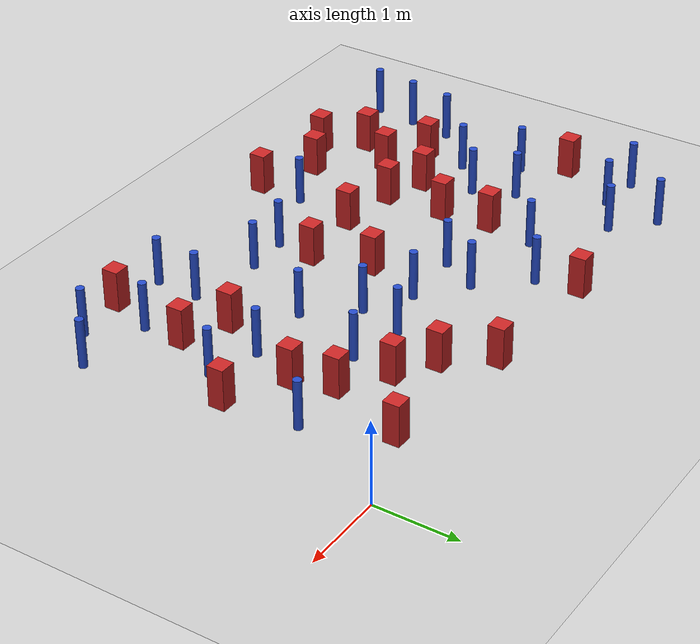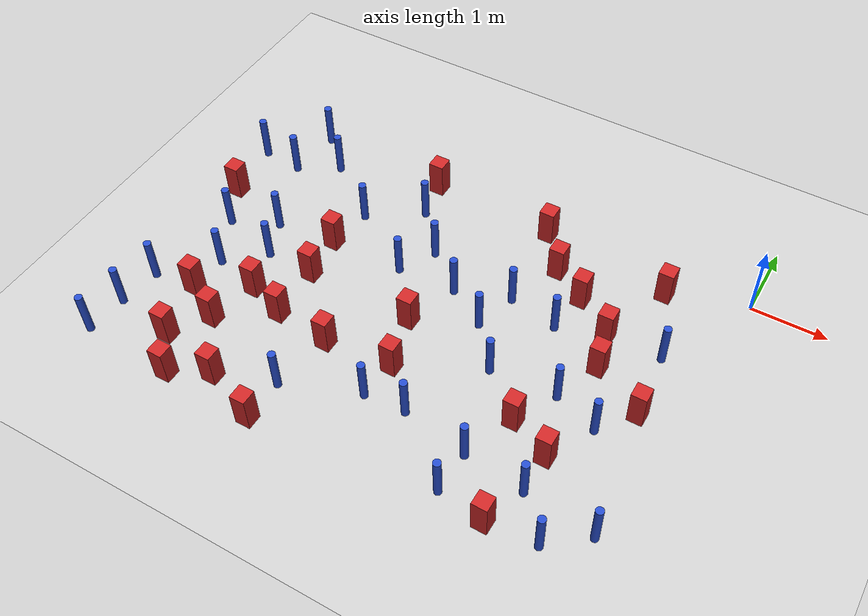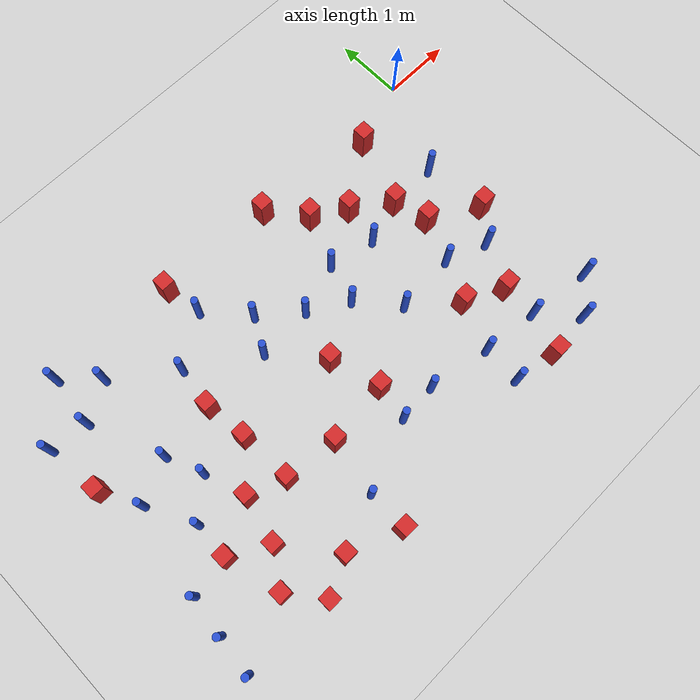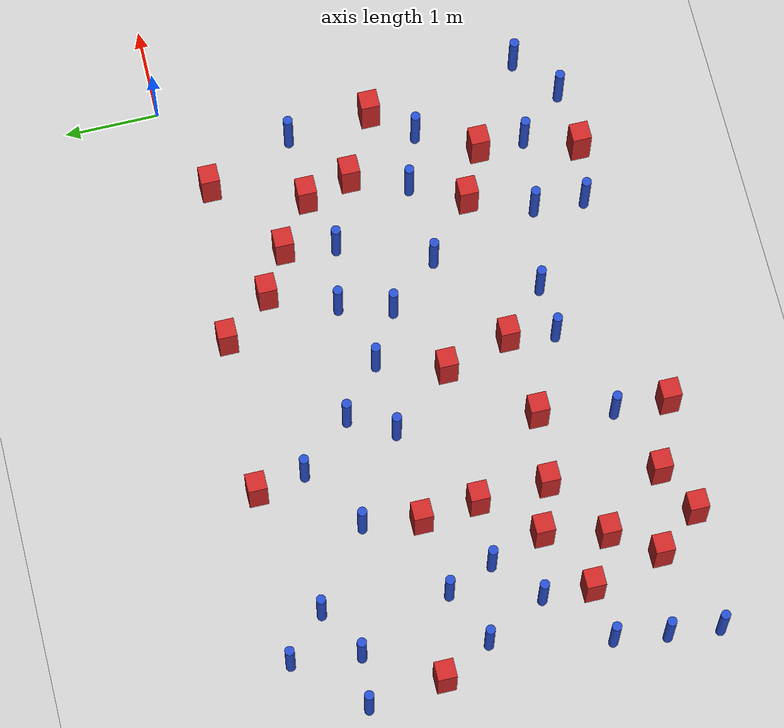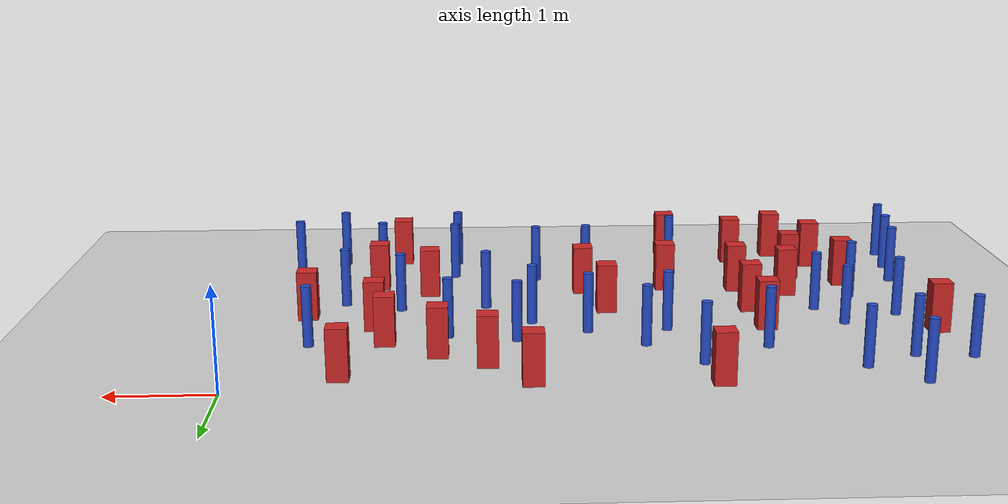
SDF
<sdf version="1.6">
 <world name="default">
  <model name="ground_plane">
   <static>1</static>
   <link name="link">
    <collision name="collision">
     <geometry><plane><normal>0 0 1</normal><size>100 100</size></plane></geometry>
     <surface><friction><ode><mu>100</mu><mu2>50</mu2></ode></friction></surface>
    </collision>
    <visual name="visual">
     <cast_shadows>0</cast_shadows>
     <geometry><plane><normal>0 0 1</normal><size>100 100</size></plane></geometry>
     <material>
      <ambient>1.0 1.0 1.0 1.0</ambient>
      <diffuse>0.8 0.8 0.8 1.0</diffuse>
      <specular>0.01 0.01 0.01 1.000000</specular>
     </material>
    </visual>
   </link>
  </model>
  <model name="square_post_obstacle4">
   <static>true</static>
   <pose>-0.558098675889 -2.19757044588 -6.11067671241e-07 -5.50515727128e-06 -8.79689657224e-07 2.37013304536e-05</pose>
   <link name="link">
    <pose>0 0 0.25 0 -0 0</pose>
    <inertial>
     <mass>100</mass>
     <inertia>
      <ixx>0.166667</ixx>
      <ixy>0</ixy>
      <ixz>0</ixz>
      <iyy>0.166667</iyy>
      <iyz>0</iyz>
      <izz>0.166667</izz>
     </inertia>
    </inertial>
    <collision name="collision"><geometry><box><size>.2 .2 .5</size></box></geometry></collision>
    <visual name="visual">
     <geometry><box><size>.2 .2 .5</size></box></geometry>
     <material>
      <script><name>Gazebo/Red</name><uri>file://media/materials/scripts/gazebo.material</uri></script>
     </material>
    </visual>
   </link>
  </model>
  <model name="square_post_obstacle14">
   <static>true</static>
   <pose>-5.1214121958 -1.67330431272 -6.11067671241e-07 -5.50515727128e-06 -8.79689657224e-07 2.37013304536e-05</pose>
   <link name="link">
    <pose>0 0 0.25 0 -0 0</pose>
    <inertial>
     <mass>100</mass>
     <inertia>
      <ixx>0.166667</ixx>
      <ixy>0</ixy>
      <ixz>0</ixz>
      <iyy>0.166667</iyy>
      <iyz>0</iyz>
      <izz>0.166667</izz>
     </inertia>
    </inertial>
    <collision name="collision"><geometry><box><size>.2 .2 .5</size></box></geometry></collision>
    <visual name="visual">
     <geometry><box><size>.2 .2 .5</size></box></geometry>
     <material>
      <script><name>Gazebo/Red</name><uri>file://media/materials/scripts/gazebo.material</uri></script>
     </material>
    </visual>
   </link>
  </model>
  <model name="pole_obstacle21">
   <static>true</static>
   <pose>-2.02783137818 -3.64568901549 -9.4761961606e-06 5.49618799729e-07 2.36310414004e-07 -1.55090534822e-07</pose>
   <link name="link">
    <pose>0 0 0.3 0 -0 0</pose>
    <inertial>
     <mass>1</mass>
     <inertia><ixx>0.145833</ixx><ixy>0</ixy><ixz>0</ixz><iyy>0.145833</iyy><iyz>0</iyz><izz>0.125</izz></inertia>
    </inertial>
    <collision name="collision">
     <geometry><cylinder><radius>0.05</radius><length>.6</length></cylinder></geometry>
    </collision>
    <visual name="visual">
     <geometry><cylinder><radius>0.05</radius><length>.6</length></cylinder></geometry>
     <material>
      <script><name>Gazebo/Blue</name><uri>file://media/materials/scripts/gazebo.material</uri></script>
     </material>
    </visual>
   </link>
  </model>
  <model name="pole_obstacle22">
   <static>true</static>
   <pose>-5.03577180284 -1.0737717976 -9.47619616065e-06 5.49618799738e-07 2.36310414071e-07 -1.55090534796e-07</pose>
   <link name="link">
    <pose>0 0 0.3 0 -0 0</pose>
    <inertial>
     <mass>1</mass>
     <inertia><ixx>0.145833</ixx><ixy>0</ixy><ixz>0</ixz><iyy>0.145833</iyy><iyz>0</iyz><izz>0.125</izz></inertia>
    </inertial>
    <collision name="collision">
     <geometry><cylinder><radius>0.05</radius><length>.6</length></cylinder></geometry>
    </collision>
    <visual name="visual">
     <geometry><cylinder><radius>0.05</radius><length>.6</length></cylinder></geometry>
     <material>
      <script><name>Gazebo/Blue</name><uri>file://media/materials/scripts/gazebo.material</uri></script>
     </material>
    </visual>
   </link>
  </model>
  <model name="square_post_obstacle19">
   <static>true</static>
   <pose>-5.03172364443 -3.02392803478 -6.11067671241e-07 -5.50515727128e-06 -8.79689657224e-07 2.37013304536e-05</pose>
   <link name="link">
    <pose>0 0 0.25 0 -0 0</pose>
    <inertial>
     <mass>100</mass>
     <inertia>
      <ixx>0.166667</ixx>
      <ixy>0</ixy>
      <ixz>0</ixz>
      <iyy>0.166667</iyy>
      <iyz>0</iyz>
      <izz>0.166667</izz>
     </inertia>
    </inertial>
    <collision name="collision"><geometry><box><size>.2 .2 .5</size></box></geometry></collision>
    <visual name="visual">
     <geometry><box><size>.2 .2 .5</size></box></geometry>
     <material>
      <script><name>Gazebo/Red</name><uri>file://media/materials/scripts/gazebo.material</uri></script>
     </material>
    </visual>
   </link>
  </model>
  <model name="pole_obstacle35">
   <static>true</static>
   <pose>-1.97851707046 -1.50995759939 -9.47619616065e-06 5.49618799737e-07 2.36310414056e-07 -1.55090534802e-07</pose>
   <link name="link">
    <pose>0 0 0.3 0 -0 0</pose>
    <inertial>
     <mass>1</mass>
     <inertia><ixx>0.145833</ixx><ixy>0</ixy><ixz>0</ixz><iyy>0.145833</iyy><iyz>0</iyz><izz>0.125</izz></inertia>
    </inertial>
    <collision name="collision">
     <geometry><cylinder><radius>0.05</radius><length>.6</length></cylinder></geometry>
    </collision>
    <visual name="visual">
     <geometry><cylinder><radius>0.05</radius><length>.6</length></cylinder></geometry>
     <material>
      <script><name>Gazebo/Blue</name><uri>file://media/materials/scripts/gazebo.material</uri></script>
     </material>
    </visual>
   </link>
  </model>
  <model name="square_post_obstacle31">
   <static>true</static>
   <pose>-5.6619315231 -4.41744637052 -6.11067671241e-07 -5.50515727128e-06 -8.79689657224e-07 2.37013304536e-05</pose>
   <link name="link">
    <pose>0 0 0.25 0 -0 0</pose>
    <inertial>
     <mass>100</mass>
     <inertia>
      <ixx>0.166667</ixx>
      <ixy>0</ixy>
      <ixz>0</ixz>
      <iyy>0.166667</iyy>
      <iyz>0</iyz>
      <izz>0.166667</izz>
     </inertia>
    </inertial>
    <collision name="collision"><geometry><box><size>.2 .2 .5</size></box></geometry></collision>
    <visual name="visual">
     <geometry><box><size>.2 .2 .5</size></box></geometry>
     <material>
      <script><name>Gazebo/Red</name><uri>file://media/materials/scripts/gazebo.material</uri></script>
     </material>
    </visual>
   </link>
  </model>
  <model name="square_post_obstacle35">
   <static>true</static>
   <pose>-3.38780124334 -3.0154551728 -6.11067671241e-07 -5.50515727128e-06 -8.79689657224e-07 2.37013304536e-05</pose>
   <link name="link">
    <pose>0 0 0.25 0 -0 0</pose>
    <inertial>
     <mass>100</mass>
     <inertia>
      <ixx>0.166667</ixx>
      <ixy>0</ixy>
      <ixz>0</ixz>
      <iyy>0.166667</iyy>
      <iyz>0</iyz>
      <izz>0.166667</izz>
     </inertia>
    </inertial>
    <collision name="collision"><geometry><box><size>.2 .2 .5</size></box></geometry></collision>
    <visual name="visual">
     <geometry><box><size>.2 .2 .5</size></box></geometry>
     <material>
      <script><name>Gazebo/Red</name><uri>file://media/materials/scripts/gazebo.material</uri></script>
     </material>
    </visual>
   </link>
  </model>
  <model name="pole_obstacle46">
   <static>true</static>
   <pose>-6.52909514919 -2.03492789765 -9.47619616065e-06 5.49618799737e-07 2.36310414063e-07 -1.55090534798e-07</pose>
   <link name="link">
    <pose>0 0 0.3 0 -0 0</pose>
    <inertial>
     <mass>1</mass>
     <inertia><ixx>0.145833</ixx><ixy>0</ixy><ixz>0</ixz><iyy>0.145833</iyy><iyz>0</iyz><izz>0.125</izz></inertia>
    </inertial>
    <collision name="collision">
     <geometry><cylinder><radius>0.05</radius><length>.6</length></cylinder></geometry>
    </collision>
    <visual name="visual">
     <geometry><cylinder><radius>0.05</radius><length>.6</length></cylinder></geometry>
     <material>
      <script><name>Gazebo/Blue</name><uri>file://media/materials/scripts/gazebo.material</uri></script>
     </material>
    </visual>
   </link>
  </model>
  <model name="pole_obstacle53">
   <static>true</static>
   <pose>-2.64111507055 -1.3773461991 -9.47619616065e-06 5.49618799737e-07 2.36310414072e-07 -1.55090534793e-07</pose>
   <link name="link">
    <pose>0 0 0.3 0 -0 0</pose>
    <inertial>
     <mass>1</mass>
     <inertia><ixx>0.145833</ixx><ixy>0</ixy><ixz>0</ixz><iyy>0.145833</iyy><iyz>0</iyz><izz>0.125</izz></inertia>
    </inertial>
    <collision name="collision">
     <geometry><cylinder><radius>0.05</radius><length>.6</length></cylinder></geometry>
    </collision>
    <visual name="visual">
     <geometry><cylinder><radius>0.05</radius><length>.6</length></cylinder></geometry>
     <material>
      <script><name>Gazebo/Blue</name><uri>file://media/materials/scripts/gazebo.material</uri></script>
     </material>
    </visual>
   </link>
  </model>
  <model name="pole_obstacle68">
   <static>true</static>
   <pose>-2.80591923487 -1.93077775715 -9.47619616065e-06 5.49618799737e-07 2.36310414072e-07 -1.55090534793e-07</pose>
   <link name="link">
    <pose>0 0 0.3 0 -0 0</pose>
    <inertial>
     <mass>1</mass>
     <inertia><ixx>0.145833</ixx><ixy>0</ixy><ixz>0</ixz><iyy>0.145833</iyy><iyz>0</iyz><izz>0.125</izz></inertia>
    </inertial>
    <collision name="collision">
     <geometry><cylinder><radius>0.05</radius><length>.6</length></cylinder></geometry>
    </collision>
    <visual name="visual">
     <geometry><cylinder><radius>0.05</radius><length>.6</length></cylinder></geometry>
     <material>
      <script><name>Gazebo/Blue</name><uri>file://media/materials/scripts/gazebo.material</uri></script>
     </material>
    </visual>
   </link>
  </model>
  <model name="square_post_obstacle56">
   <static>true</static>
   <pose>-5.70026569055 -3.48838123317 -6.11067671241e-07 -5.50515727128e-06 -8.79689657224e-07 2.37013304536e-05</pose>
   <link name="link">
    <pose>0 0 0.25 0 -0 0</pose>
    <inertial>
     <mass>100</mass>
     <inertia>
      <ixx>0.166667</ixx>
      <ixy>0</ixy>
      <ixz>0</ixz>
      <iyy>0.166667</iyy>
      <iyz>0</iyz>
      <izz>0.166667</izz>
     </inertia>
    </inertial>
    <collision name="collision"><geometry><box><size>.2 .2 .5</size></box></geometry></collision>
    <visual name="visual">
     <geometry><box><size>.2 .2 .5</size></box></geometry>
     <material>
      <script><name>Gazebo/Red</name><uri>file://media/materials/scripts/gazebo.material</uri></script>
     </material>
    </visual>
   </link>
  </model>
  <model name="square_post_obstacle57">
   <static>true</static>
   <pose>-6.02139388308 -3.96171412349 -6.11067671241e-07 -5.50515727128e-06 -8.79689657224e-07 2.37013304536e-05</pose>
   <link name="link">
    <pose>0 0 0.25 0 -0 0</pose>
    <inertial>
     <mass>100</mass>
     <inertia>
      <ixx>0.166667</ixx>
      <ixy>0</ixy>
      <ixz>0</ixz>
      <iyy>0.166667</iyy>
      <iyz>0</iyz>
      <izz>0.166667</izz>
     </inertia>
    </inertial>
    <collision name="collision"><geometry><box><size>.2 .2 .5</size></box></geometry></collision>
    <visual name="visual">
     <geometry><box><size>.2 .2 .5</size></box></geometry>
     <material>
      <script><name>Gazebo/Red</name><uri>file://media/materials/scripts/gazebo.material</uri></script>
     </material>
    </visual>
   </link>
  </model>
  <model name="square_post_obstacle61">
   <static>true</static>
   <pose>-5.54104219781 -2.83937394282 -6.11067671241e-07 -5.50515727128e-06 -8.79689657224e-07 2.37013304536e-05</pose>
   <link name="link">
    <pose>0 0 0.25 0 -0 0</pose>
    <inertial>
     <mass>100</mass>
     <inertia>
      <ixx>0.166667</ixx>
      <ixy>0</ixy>
      <ixz>0</ixz>
      <iyy>0.166667</iyy>
      <iyz>0</iyz>
      <izz>0.166667</izz>
     </inertia>
    </inertial>
    <collision name="collision"><geometry><box><size>.2 .2 .5</size></box></geometry></collision>
    <visual name="visual">
     <geometry><box><size>.2 .2 .5</size></box></geometry>
     <material>
      <script><name>Gazebo/Red</name><uri>file://media/materials/scripts/gazebo.material</uri></script>
     </material>
    </visual>
   </link>
  </model>
  <model name="square_post_obstacle67">
   <static>true</static>
   <pose>-4.44363134216 -0.104525454415 -6.11067671241e-07 -5.50515727128e-06 -8.79689657224e-07 2.37013304536e-05</pose>
   <link name="link">
    <pose>0 0 0.25 0 -0 0</pose>
    <inertial>
     <mass>100</mass>
     <inertia>
      <ixx>0.166667</ixx>
      <ixy>0</ixy>
      <ixz>0</ixz>
      <iyy>0.166667</iyy>
      <iyz>0</iyz>
      <izz>0.166667</izz>
     </inertia>
    </inertial>
    <collision name="collision"><geometry><box><size>.2 .2 .5</size></box></geometry></collision>
    <visual name="visual">
     <geometry><box><size>.2 .2 .5</size></box></geometry>
     <material>
      <script><name>Gazebo/Red</name><uri>file://media/materials/scripts/gazebo.material</uri></script>
     </material>
    </visual>
   </link>
  </model>
  <model name="square_post_obstacle68">
   <static>true</static>
   <pose>-1.43339559168 -4.28396997775 -6.11067671241e-07 -5.50515727128e-06 -8.79689657224e-07 2.37013304536e-05</pose>
   <link name="link">
    <pose>0 0 0.25 0 -0 0</pose>
    <inertial>
     <mass>100</mass>
     <inertia>
      <ixx>0.166667</ixx>
      <ixy>0</ixy>
      <ixz>0</ixz>
      <iyy>0.166667</iyy>
      <iyz>0</iyz>
      <izz>0.166667</izz>
     </inertia>
    </inertial>
    <collision name="collision"><geometry><box><size>.2 .2 .5</size></box></geometry></collision>
    <visual name="visual">
     <geometry><box><size>.2 .2 .5</size></box></geometry>
     <material>
      <script><name>Gazebo/Red</name><uri>file://media/materials/scripts/gazebo.material</uri></script>
     </material>
    </visual>
   </link>
  </model>
  <model name="pole_obstacle84">
   <static>true</static>
   <pose>-6.28256423643 -0.0386260859605 -9.47619616065e-06 5.49618799737e-07 2.36310414061e-07 -1.55090534802e-07</pose>
   <link name="link">
    <pose>0 0 0.3 0 -0 0</pose>
    <inertial>
     <mass>1</mass>
     <inertia><ixx>0.145833</ixx><ixy>0</ixy><ixz>0</ixz><iyy>0.145833</iyy><iyz>0</iyz><izz>0.125</izz></inertia>
    </inertial>
    <collision name="collision">
     <geometry><cylinder><radius>0.05</radius><length>.6</length></cylinder></geometry>
    </collision>
    <visual name="visual">
     <geometry><cylinder><radius>0.05</radius><length>.6</length></cylinder></geometry>
     <material>
      <script><name>Gazebo/Blue</name><uri>file://media/materials/scripts/gazebo.material</uri></script>
     </material>
    </visual>
   </link>
  </model>
  <model name="pole_obstacle91">
   <static>true</static>
   <pose>-0.316343230881 -3.84431072749 -9.47619616065e-06 5.49618799738e-07 2.36310414065e-07 -1.55090534798e-07</pose>
   <link name="link">
    <pose>0 0 0.3 0 -0 0</pose>
    <inertial>
     <mass>1</mass>
     <inertia><ixx>0.145833</ixx><ixy>0</ixy><ixz>0</ixz><iyy>0.145833</iyy><iyz>0</iyz><izz>0.125</izz></inertia>
    </inertial>
    <collision name="collision">
     <geometry><cylinder><radius>0.05</radius><length>.6</length></cylinder></geometry>
    </collision>
    <visual name="visual">
     <geometry><cylinder><radius>0.05</radius><length>.6</length></cylinder></geometry>
     <material>
      <script><name>Gazebo/Blue</name><uri>file://media/materials/scripts/gazebo.material</uri></script>
     </material>
    </visual>
   </link>
  </model>
  <model name="pole_obstacle92">
   <static>true</static>
   <pose>-5.73408871756 -2.26085295425 -9.47619616065e-06 5.49618799738e-07 2.36310414051e-07 -1.55090534805e-07</pose>
   <link name="link">
    <pose>0 0 0.3 0 -0 0</pose>
    <inertial>
     <mass>1</mass>
     <inertia><ixx>0.145833</ixx><ixy>0</ixy><ixz>0</ixz><iyy>0.145833</iyy><iyz>0</iyz><izz>0.125</izz></inertia>
    </inertial>
    <collision name="collision">
     <geometry><cylinder><radius>0.05</radius><length>.6</length></cylinder></geometry>
    </collision>
    <visual name="visual">
     <geometry><cylinder><radius>0.05</radius><length>.6</length></cylinder></geometry>
     <material>
      <script><name>Gazebo/Blue</name><uri>file://media/materials/scripts/gazebo.material</uri></script>
     </material>
    </visual>
   </link>
  </model>
  <model name="square_post_obstacle88">
   <static>true</static>
   <pose>-6.21681248669 -3.19283623204 -6.11067671241e-07 -5.50515727128e-06 -8.79689657224e-07 2.37013304536e-05</pose>
   <link name="link">
    <pose>0 0 0.25 0 -0 0</pose>
    <inertial>
     <mass>100</mass>
     <inertia>
      <ixx>0.166667</ixx>
      <ixy>0</ixy>
      <ixz>0</ixz>
      <iyy>0.166667</iyy>
      <iyz>0</iyz>
      <izz>0.166667</izz>
     </inertia>
    </inertial>
    <collision name="collision"><geometry><box><size>.2 .2 .5</size></box></geometry></collision>
    <visual name="visual">
     <geometry><box><size>.2 .2 .5</size></box></geometry>
     <material>
      <script><name>Gazebo/Red</name><uri>file://media/materials/scripts/gazebo.material</uri></script>
     </material>
    </visual>
   </link>
  </model>
  <model name="square_post_obstacle90">
   <static>true</static>
   <pose>-5.060618485 -2.28056395213 -6.11067671241e-07 -5.50515727128e-06 -8.79689657224e-07 2.37013304536e-05</pose>
   <link name="link">
    <pose>0 0 0.25 0 -0 0</pose>
    <inertial>
     <mass>100</mass>
     <inertia>
      <ixx>0.166667</ixx>
      <ixy>0</ixy>
      <ixz>0</ixz>
      <iyy>0.166667</iyy>
      <iyz>0</iyz>
      <izz>0.166667</izz>
     </inertia>
    </inertial>
    <collision name="collision"><geometry><box><size>.2 .2 .5</size></box></geometry></collision>
    <visual name="visual">
     <geometry><box><size>.2 .2 .5</size></box></geometry>
     <material>
      <script><name>Gazebo/Red</name><uri>file://media/materials/scripts/gazebo.material</uri></script>
     </material>
    </visual>
   </link>
  </model>
  <model name="square_post_obstacle98">
   <static>true</static>
   <pose>-1.22370831473 -3.23292168933 -6.11067671241e-07 -5.50515727128e-06 -8.79689657224e-07 2.37013304536e-05</pose>
   <link name="link">
    <pose>0 0 0.25 0 -0 0</pose>
    <inertial>
     <mass>100</mass>
     <inertia>
      <ixx>0.166667</ixx>
      <ixy>0</ixy>
      <ixz>0</ixz>
      <iyy>0.166667</iyy>
      <iyz>0</iyz>
      <izz>0.166667</izz>
     </inertia>
    </inertial>
    <collision name="collision"><geometry><box><size>.2 .2 .5</size></box></geometry></collision>
    <visual name="visual">
     <geometry><box><size>.2 .2 .5</size></box></geometry>
     <material>
      <script><name>Gazebo/Red</name><uri>file://media/materials/scripts/gazebo.material</uri></script>
     </material>
    </visual>
   </link>
  </model>
  <model name="pole_obstacle105">
   <static>true</static>
   <pose>-0.644581130733 -1.30055935071 -9.47619616065e-06 5.49618799738e-07 2.36310414061e-07 -1.55090534801e-07</pose>
   <link name="link">
    <pose>0 0 0.3 0 -0 0</pose>
    <inertial>
     <mass>1</mass>
     <inertia><ixx>0.145833</ixx><ixy>0</ixy><ixz>0</ixz><iyy>0.145833</iyy><iyz>0</iyz><izz>0.125</izz></inertia>
    </inertial>
    <collision name="collision">
     <geometry><cylinder><radius>0.05</radius><length>.6</length></cylinder></geometry>
    </collision>
    <visual name="visual">
     <geometry><cylinder><radius>0.05</radius><length>.6</length></cylinder></geometry>
     <material>
      <script><name>Gazebo/Blue</name><uri>file://media/materials/scripts/gazebo.material</uri></script>
     </material>
    </visual>
   </link>
  </model>
  <model name="pole_obstacle106">
   <static>true</static>
   <pose>-5.83723921099 -0.462687000791 -9.47619616065e-06 5.49618799737e-07 2.36310414073e-07 -1.55090534793e-07</pose>
   <link name="link">
    <pose>0 0 0.3 0 -0 0</pose>
    <inertial>
     <mass>1</mass>
     <inertia><ixx>0.145833</ixx><ixy>0</ixy><ixz>0</ixz><iyy>0.145833</iyy><iyz>0</iyz><izz>0.125</izz></inertia>
    </inertial>
    <collision name="collision">
     <geometry><cylinder><radius>0.05</radius><length>.6</length></cylinder></geometry>
    </collision>
    <visual name="visual">
     <geometry><cylinder><radius>0.05</radius><length>.6</length></cylinder></geometry>
     <material>
      <script><name>Gazebo/Blue</name><uri>file://media/materials/scripts/gazebo.material</uri></script>
     </material>
    </visual>
   </link>
  </model>
  <model name="square_post_obstacle104">
   <static>true</static>
   <pose>-1.88839204269 -0.961411122425 -6.11067671241e-07 -5.50515727128e-06 -8.79689657224e-07 2.37013304536e-05</pose>
   <link name="link">
    <pose>0 0 0.25 0 -0 0</pose>
    <inertial>
     <mass>100</mass>
     <inertia>
      <ixx>0.166667</ixx>
      <ixy>0</ixy>
      <ixz>0</ixz>
      <iyy>0.166667</iyy>
      <iyz>0</iyz>
      <izz>0.166667</izz>
     </inertia>
    </inertial>
    <collision name="collision"><geometry><box><size>.2 .2 .5</size></box></geometry></collision>
    <visual name="visual">
     <geometry><box><size>.2 .2 .5</size></box></geometry>
     <material>
      <script><name>Gazebo/Red</name><uri>file://media/materials/scripts/gazebo.material</uri></script>
     </material>
    </visual>
   </link>
  </model>
  <model name="square_post_obstacle111">
   <static>true</static>
   <pose>-1.24711318806 -1.81913500594 -6.11067671241e-07 -5.50515727128e-06 -8.79689657224e-07 2.37013304536e-05</pose>
   <link name="link">
    <pose>0 0 0.25 0 -0 0</pose>
    <inertial>
     <mass>100</mass>
     <inertia>
      <ixx>0.166667</ixx>
      <ixy>0</ixy>
      <ixz>0</ixz>
      <iyy>0.166667</iyy>
      <iyz>0</iyz>
      <izz>0.166667</izz>
     </inertia>
    </inertial>
    <collision name="collision"><geometry><box><size>.2 .2 .5</size></box></geometry></collision>
    <visual name="visual">
     <geometry><box><size>.2 .2 .5</size></box></geometry>
     <material>
      <script><name>Gazebo/Red</name><uri>file://media/materials/scripts/gazebo.material</uri></script>
     </material>
    </visual>
   </link>
  </model>
  <model name="pole_obstacle118">
   <static>true</static>
   <pose>-0.906315288916 -2.62268921185 -9.47619616065e-06 5.49618799737e-07 2.36310414066e-07 -1.55090534797e-07</pose>
   <link name="link">
    <pose>0 0 0.3 0 -0 0</pose>
    <inertial>
     <mass>1</mass>
     <inertia><ixx>0.145833</ixx><ixy>0</ixy><ixz>0</ixz><iyy>0.145833</iyy><iyz>0</iyz><izz>0.125</izz></inertia>
    </inertial>
    <collision name="collision">
     <geometry><cylinder><radius>0.05</radius><length>.6</length></cylinder></geometry>
    </collision>
    <visual name="visual">
     <geometry><cylinder><radius>0.05</radius><length>.6</length></cylinder></geometry>
     <material>
      <script><name>Gazebo/Blue</name><uri>file://media/materials/scripts/gazebo.material</uri></script>
     </material>
    </visual>
   </link>
  </model>
  <model name="square_post_obstacle120">
   <static>true</static>
   <pose>-2.75110505425 -0.165582266209 -6.11067671241e-07 -5.50515727128e-06 -8.79689657224e-07 2.37013304536e-05</pose>
   <link name="link">
    <pose>0 0 0.25 0 -0 0</pose>
    <inertial>
     <mass>100</mass>
     <inertia>
      <ixx>0.166667</ixx>
      <ixy>0</ixy>
      <ixz>0</ixz>
      <iyy>0.166667</iyy>
      <iyz>0</iyz>
      <izz>0.166667</izz>
     </inertia>
    </inertial>
    <collision name="collision"><geometry><box><size>.2 .2 .5</size></box></geometry></collision>
    <visual name="visual">
     <geometry><box><size>.2 .2 .5</size></box></geometry>
     <material>
      <script><name>Gazebo/Red</name><uri>file://media/materials/scripts/gazebo.material</uri></script>
     </material>
    </visual>
   </link>
  </model>
  <model name="pole_obstacle120">
   <static>true</static>
   <pose>-4.35592057772 -0.625461330432 -9.47619616065e-06 5.49618799737e-07 2.36310414061e-07 -1.550905348e-07</pose>
   <link name="link">
    <pose>0 0 0.3 0 -0 0</pose>
    <inertial>
     <mass>1</mass>
     <inertia><ixx>0.145833</ixx><ixy>0</ixy><ixz>0</ixz><iyy>0.145833</iyy><iyz>0</iyz><izz>0.125</izz></inertia>
    </inertial>
    <collision name="collision">
     <geometry><cylinder><radius>0.05</radius><length>.6</length></cylinder></geometry>
    </collision>
    <visual name="visual">
     <geometry><cylinder><radius>0.05</radius><length>.6</length></cylinder></geometry>
     <material>
      <script><name>Gazebo/Blue</name><uri>file://media/materials/scripts/gazebo.material</uri></script>
     </material>
    </visual>
   </link>
  </model>
  <model name="pole_obstacle122">
   <static>true</static>
   <pose>-4.42557529834 -3.8945657967 -9.47619616065e-06 5.49618799738e-07 2.36310414051e-07 -1.55090534805e-07</pose>
   <link name="link">
    <pose>0 0 0.3 0 -0 0</pose>
    <inertial>
     <mass>1</mass>
     <inertia><ixx>0.145833</ixx><ixy>0</ixy><ixz>0</ixz><iyy>0.145833</iyy><iyz>0</iyz><izz>0.125</izz></inertia>
    </inertial>
    <collision name="collision">
     <geometry><cylinder><radius>0.05</radius><length>.6</length></cylinder></geometry>
    </collision>
    <visual name="visual">
     <geometry><cylinder><radius>0.05</radius><length>.6</length></cylinder></geometry>
     <material>
      <script><name>Gazebo/Blue</name><uri>file://media/materials/scripts/gazebo.material</uri></script>
     </material>
    </visual>
   </link>
  </model>
  <model name="pole_obstacle124">
   <static>true</static>
   <pose>-5.93572781531 -1.76683759413 -9.47619616065e-06 5.49618799738e-07 2.36310414071e-07 -1.55090534796e-07</pose>
   <link name="link">
    <pose>0 0 0.3 0 -0 0</pose>
    <inertial>
     <mass>1</mass>
     <inertia><ixx>0.145833</ixx><ixy>0</ixy><ixz>0</ixz><iyy>0.145833</iyy><iyz>0</iyz><izz>0.125</izz></inertia>
    </inertial>
    <collision name="collision">
     <geometry><cylinder><radius>0.05</radius><length>.6</length></cylinder></geometry>
    </collision>
    <visual name="visual">
     <geometry><cylinder><radius>0.05</radius><length>.6</length></cylinder></geometry>
     <material>
      <script><name>Gazebo/Blue</name><uri>file://media/materials/scripts/gazebo.material</uri></script>
     </material>
    </visual>
   </link>
  </model>
  <model name="pole_obstacle139">
   <static>true</static>
   <pose>-4.13327321547 -1.64920274931 -9.47619616065e-06 5.49618799738e-07 2.36310414071e-07 -1.55090534796e-07</pose>
   <link name="link">
    <pose>0 0 0.3 0 -0 0</pose>
    <inertial>
     <mass>1</mass>
     <inertia><ixx>0.145833</ixx><ixy>0</ixy><ixz>0</ixz><iyy>0.145833</iyy><iyz>0</iyz><izz>0.125</izz></inertia>
    </inertial>
    <collision name="collision">
     <geometry><cylinder><radius>0.05</radius><length>.6</length></cylinder></geometry>
    </collision>
    <visual name="visual">
     <geometry><cylinder><radius>0.05</radius><length>.6</length></cylinder></geometry>
     <material>
      <script><name>Gazebo/Blue</name><uri>file://media/materials/scripts/gazebo.material</uri></script>
     </material>
    </visual>
   </link>
  </model>
  <model name="pole_obstacle140">
   <static>true</static>
   <pose>-1.48411141896 -2.41743795469 -9.47619616065e-06 5.49618799737e-07 2.36310414062e-07 -1.55090534798e-07</pose>
   <link name="link">
    <pose>0 0 0.3 0 -0 0</pose>
    <inertial>
     <mass>1</mass>
     <inertia><ixx>0.145833</ixx><ixy>0</ixy><ixz>0</ixz><iyy>0.145833</iyy><iyz>0</iyz><izz>0.125</izz></inertia>
    </inertial>
    <collision name="collision">
     <geometry><cylinder><radius>0.05</radius><length>.6</length></cylinder></geometry>
    </collision>
    <visual name="visual">
     <geometry><cylinder><radius>0.05</radius><length>.6</length></cylinder></geometry>
     <material>
      <script><name>Gazebo/Blue</name><uri>file://media/materials/scripts/gazebo.material</uri></script>
     </material>
    </visual>
   </link>
  </model>
  <model name="square_post_obstacle140">
   <static>true</static>
   <pose>-4.27634395152 -3.10544368817 -6.11067671241e-07 -5.50515727128e-06 -8.79689657224e-07 2.37013304536e-05</pose>
   <link name="link">
    <pose>0 0 0.25 0 -0 0</pose>
    <inertial>
     <mass>100</mass>
     <inertia>
      <ixx>0.166667</ixx>
      <ixy>0</ixy>
      <ixz>0</ixz>
      <iyy>0.166667</iyy>
      <iyz>0</iyz>
      <izz>0.166667</izz>
     </inertia>
    </inertial>
    <collision name="collision"><geometry><box><size>.2 .2 .5</size></box></geometry></collision>
    <visual name="visual">
     <geometry><box><size>.2 .2 .5</size></box></geometry>
     <material>
      <script><name>Gazebo/Red</name><uri>file://media/materials/scripts/gazebo.material</uri></script>
     </material>
    </visual>
   </link>
  </model>
  <model name="pole_obstacle151">
   <static>true</static>
   <pose>-6.78782077774 -3.26657360142 -9.47619616065e-06 5.49618799738e-07 2.36310414051e-07 -1.55090534805e-07</pose>
   <link name="link">
    <pose>0 0 0.3 0 -0 0</pose>
    <inertial>
     <mass>1</mass>
     <inertia><ixx>0.145833</ixx><ixy>0</ixy><ixz>0</ixz><iyy>0.145833</iyy><iyz>0</iyz><izz>0.125</izz></inertia>
    </inertial>
    <collision name="collision">
     <geometry><cylinder><radius>0.05</radius><length>.6</length></cylinder></geometry>
    </collision>
    <visual name="visual">
     <geometry><cylinder><radius>0.05</radius><length>.6</length></cylinder></geometry>
     <material>
      <script><name>Gazebo/Blue</name><uri>file://media/materials/scripts/gazebo.material</uri></script>
     </material>
    </visual>
   </link>
  </model>
  <model name="pole_obstacle155">
   <static>true</static>
   <pose>-2.0527264302 -4.18795268908 -9.47619616065e-06 5.49618799738e-07 2.3631041406e-07 -1.55090534801e-07</pose>
   <link name="link">
    <pose>0 0 0.3 0 -0 0</pose>
    <inertial>
     <mass>1</mass>
     <inertia><ixx>0.145833</ixx><ixy>0</ixy><ixz>0</ixz><iyy>0.145833</iyy><iyz>0</iyz><izz>0.125</izz></inertia>
    </inertial>
    <collision name="collision">
     <geometry><cylinder><radius>0.05</radius><length>.6</length></cylinder></geometry>
    </collision>
    <visual name="visual">
     <geometry><cylinder><radius>0.05</radius><length>.6</length></cylinder></geometry>
     <material>
      <script><name>Gazebo/Blue</name><uri>file://media/materials/scripts/gazebo.material</uri></script>
     </material>
    </visual>
   </link>
  </model>
  <model name="square_post_obstacle153">
   <static>true</static>
   <pose>-5.15889823007 -4.17500327851 -6.11067671241e-07 -5.50515727128e-06 -8.79689657224e-07 2.37013304536e-05</pose>
   <link name="link">
    <pose>0 0 0.25 0 -0 0</pose>
    <inertial>
     <mass>100</mass>
     <inertia>
      <ixx>0.166667</ixx>
      <ixy>0</ixy>
      <ixz>0</ixz>
      <iyy>0.166667</iyy>
      <iyz>0</iyz>
      <izz>0.166667</izz>
     </inertia>
    </inertial>
    <collision name="collision"><geometry><box><size>.2 .2 .5</size></box></geometry></collision>
    <visual name="visual">
     <geometry><box><size>.2 .2 .5</size></box></geometry>
     <material>
      <script><name>Gazebo/Red</name><uri>file://media/materials/scripts/gazebo.material</uri></script>
     </material>
    </visual>
   </link>
  </model>
  <model name="pole_obstacle164">
   <static>true</static>
   <pose>-6.92119468607 -4.35294224259 -9.47619616065e-06 5.49618799737e-07 2.36310414037e-07 -1.55090534814e-07</pose>
   <link name="link">
    <pose>0 0 0.3 0 -0 0</pose>
    <inertial>
     <mass>1</mass>
     <inertia><ixx>0.145833</ixx><ixy>0</ixy><ixz>0</ixz><iyy>0.145833</iyy><iyz>0</iyz><izz>0.125</izz></inertia>
    </inertial>
    <collision name="collision">
     <geometry><cylinder><radius>0.05</radius><length>.6</length></cylinder></geometry>
    </collision>
    <visual name="visual">
     <geometry><cylinder><radius>0.05</radius><length>.6</length></cylinder></geometry>
     <material>
      <script><name>Gazebo/Blue</name><uri>file://media/materials/scripts/gazebo.material</uri></script>
     </material>
    </visual>
   </link>
  </model>
  <model name="square_post_obstacle164">
   <static>true</static>
   <pose>-4.43692720538 -4.46014937994 -6.11067671241e-07 -5.50515727128e-06 -8.79689657224e-07 2.37013304536e-05</pose>
   <link name="link">
    <pose>0 0 0.25 0 -0 0</pose>
    <inertial>
     <mass>100</mass>
     <inertia>
      <ixx>0.166667</ixx>
      <ixy>0</ixy>
      <ixz>0</ixz>
      <iyy>0.166667</iyy>
      <iyz>0</iyz>
      <izz>0.166667</izz>
     </inertia>
    </inertial>
    <collision name="collision"><geometry><box><size>.2 .2 .5</size></box></geometry></collision>
    <visual name="visual">
     <geometry><box><size>.2 .2 .5</size></box></geometry>
     <material>
      <script><name>Gazebo/Red</name><uri>file://media/materials/scripts/gazebo.material</uri></script>
     </material>
    </visual>
   </link>
  </model>
  <model name="square_post_obstacle165">
   <static>true</static>
   <pose>-3.58350204991 -2.31248058472 -6.11067671241e-07 -5.50515727128e-06 -8.79689657224e-07 2.37013304536e-05</pose>
   <link name="link">
    <pose>0 0 0.25 0 -0 0</pose>
    <inertial>
     <mass>100</mass>
     <inertia>
      <ixx>0.166667</ixx>
      <ixy>0</ixy>
      <ixz>0</ixz>
      <iyy>0.166667</iyy>
      <iyz>0</iyz>
      <izz>0.166667</izz>
     </inertia>
    </inertial>
    <collision name="collision"><geometry><box><size>.2 .2 .5</size></box></geometry></collision>
    <visual name="visual">
     <geometry><box><size>.2 .2 .5</size></box></geometry>
     <material>
      <script><name>Gazebo/Red</name><uri>file://media/materials/scripts/gazebo.material</uri></script>
     </material>
    </visual>
   </link>
  </model>
  <model name="square_post_obstacle167">
   <static>true</static>
   <pose>-1.76474088062 -2.97639651666 -6.11067671241e-07 -5.50515727128e-06 -8.79689657224e-07 2.37013304536e-05</pose>
   <link name="link">
    <pose>0 0 0.25 0 -0 0</pose>
    <inertial>
     <mass>100</mass>
     <inertia>
      <ixx>0.166667</ixx>
      <ixy>0</ixy>
      <ixz>0</ixz>
      <iyy>0.166667</iyy>
      <iyz>0</iyz>
      <izz>0.166667</izz>
     </inertia>
    </inertial>
    <collision name="collision"><geometry><box><size>.2 .2 .5</size></box></geometry></collision>
    <visual name="visual">
     <geometry><box><size>.2 .2 .5</size></box></geometry>
     <material>
      <script><name>Gazebo/Red</name><uri>file://media/materials/scripts/gazebo.material</uri></script>
     </material>
    </visual>
   </link>
  </model>
  <model name="pole_obstacle171">
   <static>true</static>
   <pose>-3.34501614182 -1.61452055363 -9.47619616065e-06 5.49618799737e-07 2.3631041403e-07 -1.5509053482e-07</pose>
   <link name="link">
    <pose>0 0 0.3 0 -0 0</pose>
    <inertial>
     <mass>1</mass>
     <inertia><ixx>0.145833</ixx><ixy>0</ixy><ixz>0</ixz><iyy>0.145833</iyy><iyz>0</iyz><izz>0.125</izz></inertia>
    </inertial>
    <collision name="collision">
     <geometry><cylinder><radius>0.05</radius><length>.6</length></cylinder></geometry>
    </collision>
    <visual name="visual">
     <geometry><cylinder><radius>0.05</radius><length>.6</length></cylinder></geometry>
     <material>
      <script><name>Gazebo/Blue</name><uri>file://media/materials/scripts/gazebo.material</uri></script>
     </material>
    </visual>
   </link>
  </model>
  <model name="pole_obstacle177">
   <static>true</static>
   <pose>-2.35364193723 -2.47369968985 -9.47619616065e-06 5.49618799737e-07 2.36310414051e-07 -1.55090534807e-07</pose>
   <link name="link">
    <pose>0 0 0.3 0 -0 0</pose>
    <inertial>
     <mass>1</mass>
     <inertia><ixx>0.145833</ixx><ixy>0</ixy><ixz>0</ixz><iyy>0.145833</iyy><iyz>0</iyz><izz>0.125</izz></inertia>
    </inertial>
    <collision name="collision">
     <geometry><cylinder><radius>0.05</radius><length>.6</length></cylinder></geometry>
    </collision>
    <visual name="visual">
     <geometry><cylinder><radius>0.05</radius><length>.6</length></cylinder></geometry>
     <material>
      <script><name>Gazebo/Blue</name><uri>file://media/materials/scripts/gazebo.material</uri></script>
     </material>
    </visual>
   </link>
  </model>
  <model name="pole_obstacle183">
   <static>true</static>
   <pose>-6.8650424706 -3.8147515969 -9.47619616065e-06 5.49618799738e-07 2.36310414051e-07 -1.55090534805e-07</pose>
   <link name="link">
    <pose>0 0 0.3 0 -0 0</pose>
    <inertial>
     <mass>1</mass>
     <inertia><ixx>0.145833</ixx><ixy>0</ixy><ixz>0</ixz><iyy>0.145833</iyy><iyz>0</iyz><izz>0.125</izz></inertia>
    </inertial>
    <collision name="collision">
     <geometry><cylinder><radius>0.05</radius><length>.6</length></cylinder></geometry>
    </collision>
    <visual name="visual">
     <geometry><cylinder><radius>0.05</radius><length>.6</length></cylinder></geometry>
     <material>
      <script><name>Gazebo/Blue</name><uri>file://media/materials/scripts/gazebo.material</uri></script>
     </material>
    </visual>
   </link>
  </model>
  <model name="square_post_obstacle184">
   <static>true</static>
   <pose>-1.00981059911 -0.362487092731 -6.11067671241e-07 -5.50515727128e-06 -8.79689657224e-07 2.37013304536e-05</pose>
   <link name="link">
    <pose>0 0 0.25 0 -0 0</pose>
    <inertial>
     <mass>100</mass>
     <inertia>
      <ixx>0.166667</ixx>
      <ixy>0</ixy>
      <ixz>0</ixz>
      <iyy>0.166667</iyy>
      <iyz>0</iyz>
      <izz>0.166667</izz>
     </inertia>
    </inertial>
    <collision name="collision"><geometry><box><size>.2 .2 .5</size></box></geometry></collision>
    <visual name="visual">
     <geometry><box><size>.2 .2 .5</size></box></geometry>
     <material>
      <script><name>Gazebo/Red</name><uri>file://media/materials/scripts/gazebo.material</uri></script>
     </material>
    </visual>
   </link>
  </model>
  <model name="square_post_obstacle191">
   <static>true</static>
   <pose>-6.79860610841 -1.5085468767 -6.11067671241e-07 -5.50515727128e-06 -8.79689657224e-07 2.37013304536e-05</pose>
   <link name="link">
    <pose>0 0 0.25 0 -0 0</pose>
    <inertial>
     <mass>100</mass>
     <inertia>
      <ixx>0.166667</ixx>
      <ixy>0</ixy>
      <ixz>0</ixz>
      <iyy>0.166667</iyy>
      <iyz>0</iyz>
      <izz>0.166667</izz>
     </inertia>
    </inertial>
    <collision name="collision"><geometry><box><size>.2 .2 .5</size></box></geometry></collision>
    <visual name="visual">
     <geometry><box><size>.2 .2 .5</size></box></geometry>
     <material>
      <script><name>Gazebo/Red</name><uri>file://media/materials/scripts/gazebo.material</uri></script>
     </material>
    </visual>
   </link>
  </model>
  <model name="pole_obstacle188">
   <static>true</static>
   <pose>-0.786512989715 -4.2262708102 -9.47619616065e-06 5.49618799737e-07 2.36310414065e-07 -1.55090534796e-07</pose>
   <link name="link">
    <pose>0 0 0.3 0 -0 0</pose>
    <inertial>
     <mass>1</mass>
     <inertia><ixx>0.145833</ixx><ixy>0</ixy><ixz>0</ixz><iyy>0.145833</iyy><iyz>0</iyz><izz>0.125</izz></inertia>
    </inertial>
    <collision name="collision">
     <geometry><cylinder><radius>0.05</radius><length>.6</length></cylinder></geometry>
    </collision>
    <visual name="visual">
     <geometry><cylinder><radius>0.05</radius><length>.6</length></cylinder></geometry>
     <material>
      <script><name>Gazebo/Blue</name><uri>file://media/materials/scripts/gazebo.material</uri></script>
     </material>
    </visual>
   </link>
  </model>
  <model name="pole_obstacle192">
   <static>true</static>
   <pose>-6.19836878347 -2.67619510575 -9.47619616065e-06 5.49618799738e-07 2.36310414051e-07 -1.55090534805e-07</pose>
   <link name="link">
    <pose>0 0 0.3 0 -0 0</pose>
    <inertial>
     <mass>1</mass>
     <inertia><ixx>0.145833</ixx><ixy>0</ixy><ixz>0</ixz><iyy>0.145833</iyy><iyz>0</iyz><izz>0.125</izz></inertia>
    </inertial>
    <collision name="collision">
     <geometry><cylinder><radius>0.05</radius><length>.6</length></cylinder></geometry>
    </collision>
    <visual name="visual">
     <geometry><cylinder><radius>0.05</radius><length>.6</length></cylinder></geometry>
     <material>
      <script><name>Gazebo/Blue</name><uri>file://media/materials/scripts/gazebo.material</uri></script>
     </material>
    </visual>
   </link>
  </model>
  <model name="pole_obstacle198">
   <static>true</static>
   <pose>-6.36409545735 -0.757115080725 -9.47619616065e-06 5.49618799737e-07 2.36310414061e-07 -1.550905348e-07</pose>
   <link name="link">
    <pose>0 0 0.3 0 -0 0</pose>
    <inertial>
     <mass>1</mass>
     <inertia><ixx>0.145833</ixx><ixy>0</ixy><ixz>0</ixz><iyy>0.145833</iyy><iyz>0</iyz><izz>0.125</izz></inertia>
    </inertial>
    <collision name="collision">
     <geometry><cylinder><radius>0.05</radius><length>.6</length></cylinder></geometry>
    </collision>
    <visual name="visual">
     <geometry><cylinder><radius>0.05</radius><length>.6</length></cylinder></geometry>
     <material>
      <script><name>Gazebo/Blue</name><uri>file://media/materials/scripts/gazebo.material</uri></script>
     </material>
    </visual>
   </link>
  </model>
  <model name="pole_obstacle202">
   <static>true</static>
   <pose>-3.87394534318 -1.18308162105 -9.47619616065e-06 5.49618799737e-07 2.36310414072e-07 -1.55090534793e-07</pose>
   <link name="link">
    <pose>0 0 0.3 0 -0 0</pose>
    <inertial>
     <mass>1</mass>
     <inertia><ixx>0.145833</ixx><ixy>0</ixy><ixz>0</ixz><iyy>0.145833</iyy><iyz>0</iyz><izz>0.125</izz></inertia>
    </inertial>
    <collision name="collision">
     <geometry><cylinder><radius>0.05</radius><length>.6</length></cylinder></geometry>
    </collision>
    <visual name="visual">
     <geometry><cylinder><radius>0.05</radius><length>.6</length></cylinder></geometry>
     <material>
      <script><name>Gazebo/Blue</name><uri>file://media/materials/scripts/gazebo.material</uri></script>
     </material>
    </visual>
   </link>
  </model>
  <model name="pole_obstacle203">
   <static>true</static>
   <pose>-6.90636757856 -0.704847570735 -9.47619616065e-06 5.49618799737e-07 2.36310414061e-07 -1.550905348e-07</pose>
   <link name="link">
    <pose>0 0 0.3 0 -0 0</pose>
    <inertial>
     <mass>1</mass>
     <inertia><ixx>0.145833</ixx><ixy>0</ixy><ixz>0</ixz><iyy>0.145833</iyy><iyz>0</iyz><izz>0.125</izz></inertia>
    </inertial>
    <collision name="collision">
     <geometry><cylinder><radius>0.05</radius><length>.6</length></cylinder></geometry>
    </collision>
    <visual name="visual">
     <geometry><cylinder><radius>0.05</radius><length>.6</length></cylinder></geometry>
     <material>
      <script><name>Gazebo/Blue</name><uri>file://media/materials/scripts/gazebo.material</uri></script>
     </material>
    </visual>
   </link>
  </model>
  <model name="pole_obstacle210">
   <static>true</static>
   <pose>-1.22950316744 -3.73542981152 -9.47619616065e-06 5.49618799737e-07 2.36310414062e-07 -1.55090534798e-07</pose>
   <link name="link">
    <pose>0 0 0.3 0 -0 0</pose>
    <inertial>
     <mass>1</mass>
     <inertia><ixx>0.145833</ixx><ixy>0</ixy><ixz>0</ixz><iyy>0.145833</iyy><iyz>0</iyz><izz>0.125</izz></inertia>
    </inertial>
    <collision name="collision">
     <geometry><cylinder><radius>0.05</radius><length>.6</length></cylinder></geometry>
    </collision>
    <visual name="visual">
     <geometry><cylinder><radius>0.05</radius><length>.6</length></cylinder></geometry>
     <material>
      <script><name>Gazebo/Blue</name><uri>file://media/materials/scripts/gazebo.material</uri></script>
     </material>
    </visual>
   </link>
  </model>
  <model name="square_post_obstacle216">
   <static>true</static>
   <pose>-1.37444936428 -1.32519809908 -6.11067671241e-07 -5.50515727128e-06 -8.79689657224e-07 2.37013304536e-05</pose>
   <link name="link">
    <pose>0 0 0.25 0 -0 0</pose>
    <inertial>
     <mass>100</mass>
     <inertia>
      <ixx>0.166667</ixx>
      <ixy>0</ixy>
      <ixz>0</ixz>
      <iyy>0.166667</iyy>
      <iyz>0</iyz>
      <izz>0.166667</izz>
     </inertia>
    </inertial>
    <collision name="collision"><geometry><box><size>.2 .2 .5</size></box></geometry></collision>
    <visual name="visual">
     <geometry><box><size>.2 .2 .5</size></box></geometry>
     <material>
      <script><name>Gazebo/Red</name><uri>file://media/materials/scripts/gazebo.material</uri></script>
     </material>
    </visual>
   </link>
  </model>
  <model name="square_post_obstacle219">
   <static>true</static>
   <pose>-2.35223359341 -0.677790693683 -6.11067671241e-07 -5.50515727128e-06 -8.79689657224e-07 2.37013304536e-05</pose>
   <link name="link">
    <pose>0 0 0.25 0 -0 0</pose>
    <inertial>
     <mass>100</mass>
     <inertia>
      <ixx>0.166667</ixx>
      <ixy>0</ixy>
      <ixz>0</ixz>
      <iyy>0.166667</iyy>
      <iyz>0</iyz>
      <izz>0.166667</izz>
     </inertia>
    </inertial>
    <collision name="collision"><geometry><box><size>.2 .2 .5</size></box></geometry></collision>
    <visual name="visual">
     <geometry><box><size>.2 .2 .5</size></box></geometry>
     <material>
      <script><name>Gazebo/Red</name><uri>file://media/materials/scripts/gazebo.material</uri></script>
     </material>
    </visual>
   </link>
  </model>
  <model name="pole_obstacle215">
   <static>true</static>
   <pose>-2.90987999061 -3.48339997922 -9.4761961606e-06 5.49618799729e-07 2.36310414004e-07 -1.55090534823e-07</pose>
   <link name="link">
    <pose>0 0 0.3 0 -0 0</pose>
    <inertial>
     <mass>1</mass>
     <inertia><ixx>0.145833</ixx><ixy>0</ixy><ixz>0</ixz><iyy>0.145833</iyy><iyz>0</iyz><izz>0.125</izz></inertia>
    </inertial>
    <collision name="collision">
     <geometry><cylinder><radius>0.05</radius><length>.6</length></cylinder></geometry>
    </collision>
    <visual name="visual">
     <geometry><cylinder><radius>0.05</radius><length>.6</length></cylinder></geometry>
     <material>
      <script><name>Gazebo/Blue</name><uri>file://media/materials/scripts/gazebo.material</uri></script>
     </material>
    </visual>
   </link>
  </model>
  <model name="pole_obstacle226">
   <static>true</static>
   <pose>-3.45525999061 -3.51567997922 -9.4761961606e-06 5.49618799729e-07 2.36310414014e-07 -1.55090534816e-07</pose>
   <link name="link">
    <pose>0 0 0.3 0 -0 0</pose>
    <inertial>
     <mass>1</mass>
     <inertia><ixx>0.145833</ixx><ixy>0</ixy><ixz>0</ixz><iyy>0.145833</iyy><iyz>0</iyz><izz>0.125</izz></inertia>
    </inertial>
    <collision name="collision">
     <geometry><cylinder><radius>0.05</radius><length>.6</length></cylinder></geometry>
    </collision>
    <visual name="visual">
     <geometry><cylinder><radius>0.05</radius><length>.6</length></cylinder></geometry>
     <material>
      <script><name>Gazebo/Blue</name><uri>file://media/materials/scripts/gazebo.material</uri></script>
     </material>
    </visual>
   </link>
  </model>
 </world>
</sdf>
